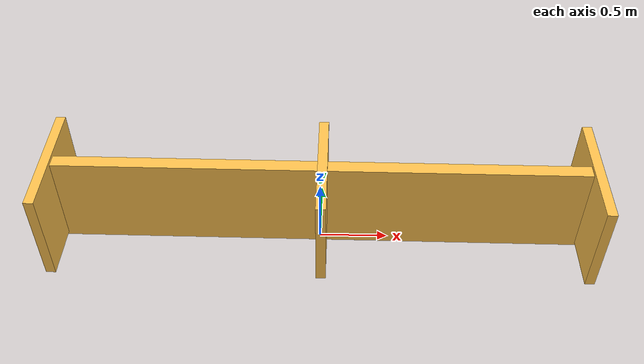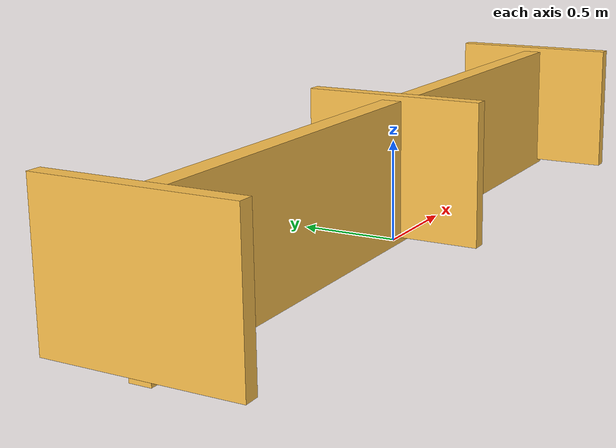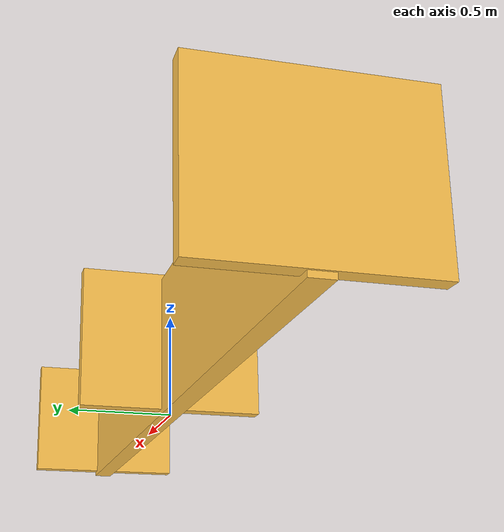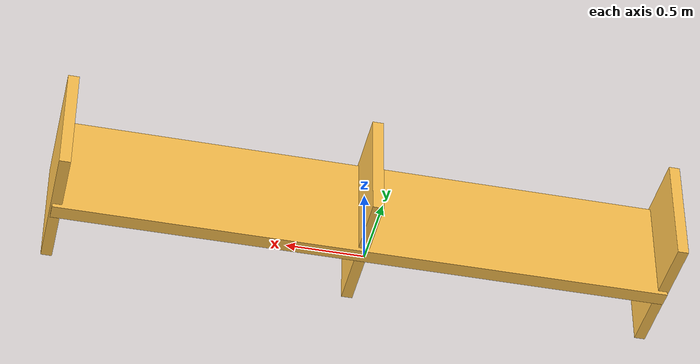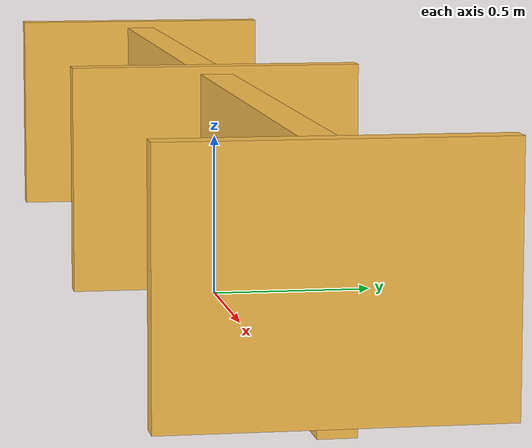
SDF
<?xml version='1.0'?>
<sdf version='1.6'>
  <model name='rack_base'>
    <pose frame=''>0 0 0 0 -0 0</pose>
    <link name='Wall_0'>
      <collision name='Wall_0_Collision'>
        <geometry>
          <box>
            <size>0.9 0.07 0.7</size>
          </box>
        </geometry>
        <pose frame=''>0 0 0.375 0 -0 0</pose>
      </collision>
      <visual name='Wall_0_Visual'>
        <pose frame=''>0 0 0.375 0 -0 0</pose>
        <geometry>
          <box>
            <size>0.9 0.07 0.7</size>
          </box>
        </geometry>
        <material>
          <script>
            <uri>file://media/materials/scripts/gazebo.material</uri>
            <name>Gazebo/Grey</name>
          </script>
          <ambient>1 0.764706 0.305882 1</ambient>
        </material>
        <meta>
          <layer>0</layer>
        </meta>
      </visual>
      <pose frame=''>1.93 0 0 0 -0 1.5708</pose>
    </link>
    <link name='Wall_2'>
      <collision name='Wall_2_Collision'>
        <geometry>
          <box>
            <size>0.9 0.07 0.7</size>
          </box>
        </geometry>
        <pose frame=''>0 0 0.375 0 -0 0</pose>
      </collision>
      <visual name='Wall_2_Visual'>
        <pose frame=''>0 0 0.375 0 -0 0</pose>
        <geometry>
          <box>
            <size>0.9 0.07 0.7</size>
          </box>
        </geometry>
        <material>
          <script>
            <uri>file://media/materials/scripts/gazebo.material</uri>
            <name>Gazebo/Grey</name>
          </script>
          <ambient>1 0.764706 0.305882 1</ambient>
        </material>
        <meta>
          <layer>0</layer>
        </meta>
      </visual>
      <pose frame=''>-1.93 0 0 0 -0 1.5708</pose>
    </link>
    <link name='Wall_4'>
      <collision name='Wall_4_Collision'>
        <geometry>
          <box>
            <size>0.9 0.07 0.7</size>
          </box>
        </geometry>
        <pose frame=''>0 0 0.375 0 -0 0</pose>
      </collision>
      <visual name='Wall_4_Visual'>
        <pose frame=''>0 0 0.375 0 -0 0</pose>
        <geometry>
          <box>
            <size>0.9 0.07 0.7</size>
          </box>
        </geometry>
        <material>
          <script>
            <uri>file://media/materials/scripts/gazebo.material</uri>
            <name>Gazebo/Grey</name>
          </script>
          <ambient>1 0.764706 0.305882 1</ambient>
        </material>
        <meta>
          <layer>0</layer>
        </meta>
      </visual>
      <pose frame=''>0.015 0 0 0 -0 1.5708</pose>
    </link>
    <link name='Wall_5'>
      <collision name='Wall_5_Collision'>
        <geometry>
          <box>
            <size>3.91 0.1 0.7</size>
          </box>
        </geometry>
        <pose frame=''>0 0 0.35 0 -0 0</pose>
      </collision>
      <visual name='Wall_5_Visual'>
        <pose frame=''>0 0 0.35 0 -0 0</pose>
        <geometry>
          <box>
            <size>3.91 0.1 0.7</size>
          </box>
        </geometry>
        <material>
          <script>
            <uri>file://media/materials/scripts/gazebo.material</uri>
            <name>Gazebo/Grey</name>
          </script>
          <ambient>1 0.764706 0.305882 1</ambient>
        </material>
        <meta>
          <layer>0</layer>
        </meta>
      </visual>
      <pose frame=''>0 0 0 0 -0 0</pose>
    </link>
    <static>1</static>
  </model>
</sdf>
